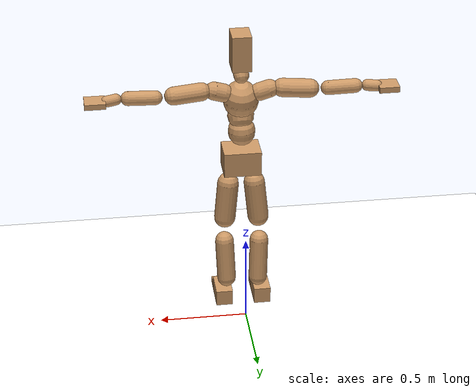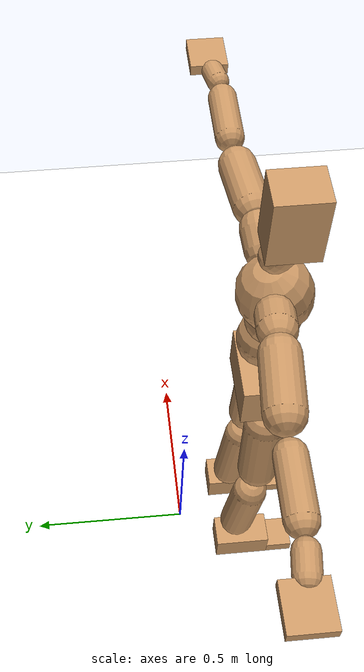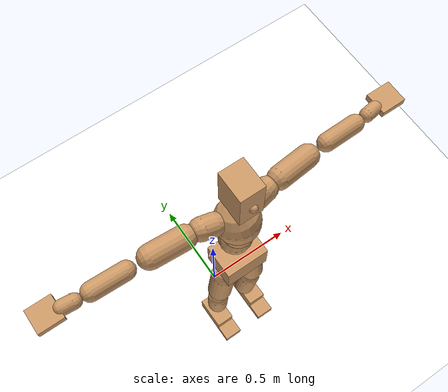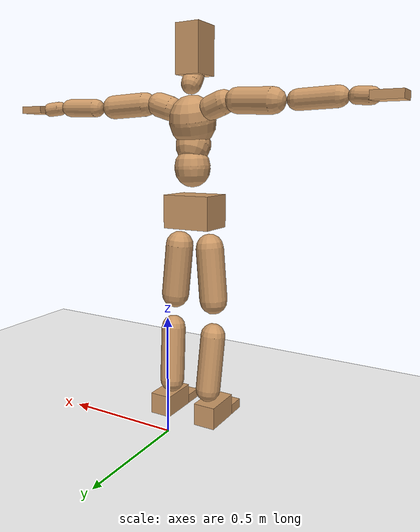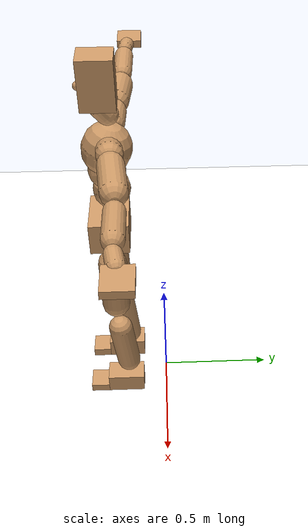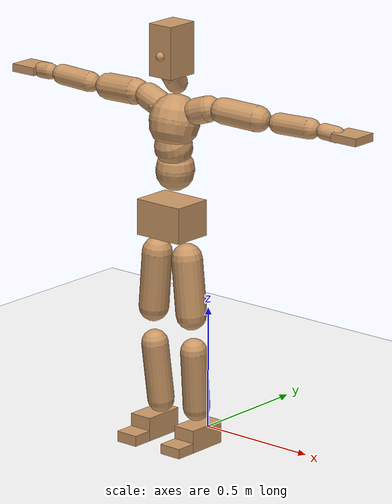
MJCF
<mujoco model="humanoid">
  <option integrator="implicitfast" />

  <visual>
    <global offwidth="1280" offheight="960" />
    <headlight active="1" ambient="0.34 0.34 0.34" diffuse="0.5 0.5 0.5" />
  </visual>

  <default>
    <joint damping="2" stiffness="2" armature="0.01" limited="true" solimplimit="0 .99 .01" />
    <geom condim="1" friction="0.7 0.005 0.0001" solimp=".99 .99 .003" solref="0.015 1" margin="0.001" rgba="0.8 0.6 .4 1" />
    <default class="smplcontact">
      <geom condim="3" friction="1. 0.005 0.0001" solref="0.015 1" solimp="0.98 0.98 0.001" priority="1" />
    </default>
    <default class="stiff_medium">
      <joint stiffness="10" />
    </default>
    <default class="stiff_medium_higher">
      <joint stiffness="50" />
    </default>
    <default class="stiff_high">
      <joint stiffness="100" />
    </default>
  </default>

  <asset>
    <texture type="skybox" builtin="gradient" rgb1="0.99 0.99 0.99" rgb2="0.608 0.828 0.892" width="100" />
    <texture builtin="flat" height="1278" mark="cross" markrgb="1 1 1" name="texgeom" random="0.01" rgb1="0.8 0.6 0.4" rgb2="0.8 0.6 0.4" type="cube" width="127" />
    <texture name="texplane" type="2d" builtin="checker" markrgb="1 1 1" rgb1="0.756 0.772 0.76" rgb2="0.6 0.6 0.6" width="100" height="100" />
    <material name="MatPlane" reflectance="0.5" texture="texplane" texrepeat="1 1" texuniform="true" />
    <material name="geom" texture="texgeom" texuniform="true" />
  </asset>

  <worldbody>
    <light name="tracking_light" pos="0 0 7" dir="0 0 -1" directional="true" cutoff="100" exponent="1" diffuse="1 1 1" specular="0.1 0.1 0.1" mode="trackcom" />
    <camera name="back" pos="0 3 2.4" xyaxes="-1 0 0 0 -1 2" mode="trackcom" />
    <camera name="side" pos="-3 0 2.4" xyaxes="0 -1 0 1 0 2" mode="trackcom" />
    <camera name="front_side" pos="-2.8 -2.8 0.8" xyaxes="0.5 -0.5 0 0.1 0.1 1" mode="trackcom" />
    <geom condim="3" name="floor" pos="0 0 0" rgba="1 1 1 1" size="100 100 .2" type="plane" material="MatPlane" />
    <body name="Pelvis" pos="-0.0018 -0.2233 0.9367" euler="90 0 0">
      <site name="Pelvis" size="0.01" />
      <freejoint name="Pelvis" />
      <geom type="box" pos="-0.0000 -0.0121 -0.0055" size="0.1069 0.0722 0.083" quat="1.0000 0.0000 0.0000 0.0000" density="3165.830099" name="Pelvis" />
      <body name="L_Hip" pos="0.0695 -0.0914 -0.0068">
        <joint name="L_Hip_x" type="hinge" pos="0 0 0" axis="1 0 0" stiffness="10.0" range="-160.0 22.92" class="stiff_medium" damping="14.999999999999998" armature="0.009999999999999998"/>
        <joint name="L_Hip_y" type="hinge" pos="0 0 0" axis="0 1 0" stiffness="10.0" range="-70.0 70.0" class="stiff_medium" damping="10.000000000000004" armature="0.010000000000000009"/>
        <joint name="L_Hip_z" type="hinge" pos="0 0 0" axis="0 0 1" stiffness="10.0" range="-28.65 90.0" class="stiff_medium" damping="9.999999999999998" armature="0.009999999999999998"/>
        <geom type="capsule" density="2040.816327" fromto="0.0069 -0.075 -0.0009 0.0274 -0.3002 -0.0036" size="0.0615" name="L_Hip" />
        <body name="L_Knee" pos="0.0343 -0.3752 -0.0045">
          <joint name="L_Knee_x" type="hinge" pos="0 0 0" axis="1 0 0" range="-5.16 171.89" damping="8.000000000000002" armature="0.010000000000000005" stiffness="2.0"/>
          <joint name="L_Knee_y" type="hinge" pos="0 0 0" axis="0 1 0" range="-4.58 6.88" damping="8.000000000000005" armature="0.010000000000000016" stiffness="2.0"/>
          <joint name="L_Knee_z" type="hinge" pos="0 0 0" axis="0 0 1" range="-6.88 4.58" damping="7.999999999999999" armature="0.009999999999999998" stiffness="2.0"/>
          <geom type="capsule" density="1234.567901" fromto="-0.0027 -0.0796 -0.0087 -0.0109 -0.3184 -0.035" size="0.0541" name="L_Knee" />
          <body name="L_Ankle" pos="-0.0136 -0.398 -0.0437">
            <joint name="L_Ankle_x" type="hinge" pos="0 0 0" axis="1 0 0" range="-45.84 45.84" class="stiff_medium" damping="6.000000000000062" armature="0.010000000000000212" stiffness="10.0"/>
            <joint name="L_Ankle_y" type="hinge" pos="0 0 0" axis="0 1 0" range="-74.48 22.92" class="stiff_medium" damping="3.000000000000001" armature="0.010000000000000005" stiffness="10.0"/>
            <joint name="L_Ankle_z" type="hinge" pos="0 0 0" axis="0 0 1" range="-4.58 4.58" class="stiff_medium" damping="6.00000000000003" armature="0.010000000000000104" stiffness="10.0"/>
            <geom type="box" pos="0.0233 -0.0239 0.0242" size="0.0483 0.0464 0.085" quat="1.0000 0.0000 0.0000 0.0000" density="449.071558" name="L_Ankle" class="smplcontact" />
            <body name="L_Toe" pos="0.0264 -0.0558 0.1193">
              <joint name="L_Toe_x" type="hinge" pos="0 0 0" axis="1 0 0" range="-91.67 22.92" armature="0.009999999999999698" damping="1.9999999999999698" stiffness="2.0"/>
              <joint name="L_Toe_y" type="hinge" pos="0 0 0" axis="0 1 0" range="-4.58 4.58" armature="0.01" damping="2.0" stiffness="2.0"/>
              <joint name="L_Toe_z" type="hinge" pos="0 0 0" axis="0 0 1" range="-4.58 4.58" armature="0.009999999999998932" damping="1.9999999999998932" stiffness="2.0"/>
              <geom type="box" pos="-0.003 0.0055 0.0248" size="0.0478 0.02 0.0496" quat="1.0000 0.0000 0.0000 0.0000" density="423.206892" name="L_Toe" class="smplcontact" />
            </body>
          </body>
        </body>
      </body>
      <body name="R_Hip" pos="-0.0677 -0.0905 -0.0043">
        <joint name="R_Hip_x" type="hinge" pos="0 0 0" axis="1 0 0" stiffness="10.0" range="-160.0 22.92" class="stiff_medium" damping="14.999999999999998" armature="0.009999999999999998"/>
        <joint name="R_Hip_y" type="hinge" pos="0 0 0" axis="0 1 0" stiffness="10.0" range="-70.0 70.0" class="stiff_medium" damping="10.000000000000004" armature="0.010000000000000009"/>
        <joint name="R_Hip_z" type="hinge" pos="0 0 0" axis="0 0 1" stiffness="10.0" range="-90.0 28.65" class="stiff_medium" damping="9.999999999999998" armature="0.009999999999999998"/>
        <geom type="capsule" density="2040.816327" fromto="-0.0077 -0.0765 -0.0018 -0.0306 -0.3061 -0.0071" size="0.0606" name="R_Hip" />
        <body name="R_Knee" pos="-0.0383 -0.3826 -0.0089">
          <joint name="R_Knee_x" type="hinge" pos="0 0 0" axis="1 0 0" range="-5.16 171.89" damping="8.000000000000002" armature="0.010000000000000005" stiffness="2.0"/>
          <joint name="R_Knee_y" type="hinge" pos="0 0 0" axis="0 1 0" range="-6.88 4.58" damping="8.000000000000005" armature="0.010000000000000016" stiffness="2.0"/>
          <joint name="R_Knee_z" type="hinge" pos="0 0 0" axis="0 0 1" range="-4.58 6.88" damping="7.999999999999999" armature="0.009999999999999998" stiffness="2.0"/>
          <geom type="capsule" density="1234.567901" fromto="0.0032 -0.0797 -0.0085 0.0126 -0.3187 -0.0338" size="0.0541" name="R_Knee" />
          <body name="R_Ankle" pos="0.0158 -0.3984 -0.0423">
            <joint name="R_Ankle_x" type="hinge" pos="0 0 0" axis="1 0 0" range="-45.84 45.84" class="stiff_medium" damping="6.000000000000062" armature="0.010000000000000212" stiffness="10.0"/>
            <joint name="R_Ankle_y" type="hinge" pos="0 0 0" axis="0 1 0" range="-22.92 74.48" class="stiff_medium" damping="3.000000000000001" armature="0.010000000000000005" stiffness="10.0"/>
            <joint name="R_Ankle_z" type="hinge" pos="0 0 0" axis="0 0 1" range="-4.58 4.58" class="stiff_medium" damping="6.00000000000003" armature="0.010000000000000104" stiffness="10.0"/>
            <geom type="box" pos="-0.0212 -0.0174 0.0256" size="0.0483 0.0478 0.0865" quat="1.0000 0.0000 0.0000 0.0000" density="434.700981" name="R_Ankle" class="smplcontact" />
            <body name="R_Toe" pos="-0.0254 -0.0481 0.1233">
              <joint name="R_Toe_x" type="hinge" pos="0 0 0" axis="1 0 0" range="-91.67 22.92" armature="0.009999999999999698" damping="1.9999999999999698" stiffness="2.0"/>
              <joint name="R_Toe_y" type="hinge" pos="0 0 0" axis="0 1 0" range="-4.58 4.58" armature="0.01" damping="2.0" stiffness="2.0"/>
              <joint name="R_Toe_z" type="hinge" pos="0 0 0" axis="0 0 1" range="-4.58 4.58" armature="0.009999999999998932" damping="1.9999999999998932" stiffness="2.0"/>
              <geom type="box" pos="0.0042 0.0045 0.0227" size="0.0479 0.0216 0.0493" quat="1.0000 0.0000 0.0000 0.0000" density="407.384095" name="R_Toe" class="smplcontact" />
            </body>
          </body>
        </body>
      </body>
      <body name="Torso" pos="-0.0025 0.109 -0.0267">
        <joint name="Torso_x" type="hinge" pos="0 0 0" axis="1 0 0" range="-25.78 57.3" class="stiff_medium" damping="13.593301082732577" armature="0.008888718408263658" stiffness="9.239068913043479"/>
        <joint name="Torso_y" type="hinge" pos="0 0 0" axis="0 1 0" range="-57.3 57.3" class="stiff_high" damping="19.12895966534628" armature="0.009963466885328839" stiffness="91.81470217391305"/>
        <joint name="Torso_z" type="hinge" pos="0 0 0" axis="0 0 1" range="-34.38 34.38" class="stiff_high" damping="18.60120066409231" armature="0.009250253601330478" stiffness="93.51221086956521"/>
        <geom type="capsule" density="2040.816327" fromto="0.0025 0.0608 0.0005 0.003 0.0743 0.0006" size="0.0769" name="Torso" />
        <body name="Spine" pos="0.0055 0.1352 0.0011">
          <joint name="Spine_x" type="hinge" pos="0 0 0" axis="1 0 0" stiffness="9.08212804347826" range="-25.78 57.3" class="stiff_medium" damping="13.162260338940744" armature="0.008477949289255556"/>
          <joint name="Spine_y" type="hinge" pos="0 0 0" axis="0 1 0" stiffness="9.104079565217392" range="-57.3 57.3" class="stiff_high" damping="7.619383321270138" armature="0.009963768471281633"/>
          <joint name="Spine_z" type="hinge" pos="0 0 0" axis="0 0 1" stiffness="18.264663043478265" range="-34.38 34.38" class="stiff_high" damping="11.049975738166228" armature="0.009284926880346591"/>
          <geom type="capsule" density="2040.816327" fromto="0.0007 0.0238 0.0114 0.0008 0.0291 0.014" size="0.0755" name="Spine" />
          <body name="Chest" pos="0.0015 0.0529 0.0254">
            <joint name="Chest_x" type="hinge" pos="0 0 0" axis="1 0 0" stiffness="8.830165217391304" range="-25.78 57.3" class="stiff_medium" damping="12.822311761608715" armature="0.00827525368950691"/>
            <joint name="Chest_y" type="hinge" pos="0 0 0" axis="0 1 0" stiffness="9.346349772727272" range="-57.3 57.3" class="stiff_high" damping="7.721479688952388" armature="0.009967335182433932"/>
            <joint name="Chest_z" type="hinge" pos="0 0 0" axis="0 0 1" stiffness="17.799269565217386" range="-34.38 34.38" class="stiff_high" damping="10.942085449939666" armature="0.009342552072704104"/>
            <geom type="capsule" density="2040.816327" fromto="-0.0009 0.0682 -0.0173 -0.001 0.0833 -0.0212" size="0.1002" name="Chest" />
            <body name="Neck" pos="-0.0028 0.2139 -0.0429">
              <joint name="Neck_x" type="hinge" pos="0 0 0" axis="1 0 0" range="-28.65 57.3" class="stiff_medium_higher" damping="7.263035472169119" armature="0.007052823969021804" stiffness="37.39756195652175"/>
              <joint name="Neck_y" type="hinge" pos="0 0 0" axis="0 1 0" range="-40.11 40.11" class="stiff_medium_higher" damping="6.98860146311493" armature="0.00655849153963308" stiffness="37.23459130434782"/>
              <joint name="Neck_z" type="hinge" pos="0 0 0" axis="0 0 1" range="-40.11 40.11" class="stiff_medium_higher" damping="7.213237401648987" armature="0.0070540734749663485" stiffness="36.87996304347826"/>
              <geom type="capsule" density="1000" fromto="0.001 0.013 0.0103 0.0041 0.052 0.0411" size="0.0436" name="Neck" />
              <body name="Head" pos="0.0052 0.065 0.0513">
                <joint name="Head_x" type="hinge" pos="0 0 0" axis="1 0 0" range="-28.65 57.3" class="stiff_medium_higher" damping="1.3944142482138124" armature="0.006668007872502372" stiffness="36.449999999999996"/>
                <joint name="Head_y" type="hinge" pos="0 0 0" axis="0 1 0" range="-40.11 40.11" class="stiff_medium_higher" damping="1.3192754246703555" armature="0.0059687505011630565" stiffness="36.449999999999996"/>
                <joint name="Head_z" type="hinge" pos="0 0 0" axis="0 0 1" range="-40.11 40.11" class="stiff_medium_higher" damping="1.3980297641467347" armature="0.006702631074897718" stiffness="36.449999999999996"/>
                <geom type="box" pos="-0.0042 0.0876 -0.0116" size="0.05454 0.10386 0.0684" quat="1.0000 0.0000 0.0000 0.0000" density="1018.069894" name="Head" />
                <geom type="capsule" name="nose" size="0.018 0.009" pos="0 0.07 0.05" quat="1 0 0 0" mass="0" contype="0" conaffinity="0" />
              </body>
            </body>
            <body name="L_Thorax" pos="0.0788 0.1217 -0.0341">
              <joint name="L_Thorax_x" type="hinge" pos="0 0 0" axis="1 0 0" range="-10.89 4.58" class="stiff_medium_higher" damping="19.999999999999936" armature="0.009999999999999936" stiffness="50.0"/>
              <joint name="L_Thorax_y" type="hinge" pos="0 0 0" axis="0 1 0" range="-28.65 17.19" class="stiff_medium_higher" damping="20.0" armature="0.01" stiffness="50.0"/>
              <joint name="L_Thorax_z" type="hinge" pos="0 0 0" axis="0 0 1" range="-31.51 40.11" class="stiff_medium_higher" damping="20.0" armature="0.01" stiffness="50.0"/>
              <geom type="capsule" density="1000" fromto="0.0182 0.0061 -0.0018 0.0728 0.0244 -0.0071" size="0.0521" name="L_Thorax" />
              <body name="L_Shoulder" pos="0.091 0.0305 -0.0089">
                <joint name="L_Shoulder_x" type="hinge" pos="0 0 0" axis="1 0 0" range="-97.4 97.4" class="stiff_medium" damping="6.000000000000057" armature="0.010000000000000191" stiffness="10.0"/>
                <joint name="L_Shoulder_y" type="hinge" pos="0 0 0" axis="0 1 0" range="-108.86 80.21" class="stiff_medium" damping="5.999999999999999" armature="0.009999999999999998" stiffness="10.0"/>
                <joint name="L_Shoulder_z" type="hinge" pos="0 0 0" axis="0 0 1" range="-97.4 85.94" class="stiff_medium" damping="6.000000000000002" armature="0.010000000000000007" stiffness="10.0"/>
                <geom type="capsule" density="1000" fromto="0.0519 -0.0026 -0.0055 0.2077 -0.0102 -0.022" size="0.0517" name="L_Shoulder" />
                <body name="L_Elbow" pos="0.2596 -0.0128 -0.0275">
                  <joint name="L_Elbow_x" type="hinge" pos="0 0 0" axis="1 0 0" range="-17.19 4.58" damping="4.999999999999989" armature="0.009999999999999959" stiffness="2.0"/>
                  <joint name="L_Elbow_y" type="hinge" pos="0 0 0" axis="0 1 0" range="-180.0 17.19" damping="5.000000000000004" armature="0.010000000000000018" stiffness="2.0"/>
                  <joint name="L_Elbow_z" type="hinge" pos="0 0 0" axis="0 0 1" range="-100.84 4.58" damping="5.0" armature="0.010000000000000002" stiffness="2.0"/>
                  <geom type="capsule" density="1000" fromto="0.0498 0.0018 -0.0002 0.1994 0.0072 -0.0009" size="0.0405" name="L_Elbow" />
                  <body name="L_Wrist" pos="0.2492 0.009 -0.0012">
                    <joint name="L_Wrist_x" type="hinge" pos="0 0 0" axis="1 0 0" range="-180.0 22.92" armature="0.009999999999999492" damping="1.9999999999999492" stiffness="2.0"/>
                    <joint name="L_Wrist_y" type="hinge" pos="0 0 0" axis="0 1 0" range="-17.19 17.19" armature="0.009999999999999894" damping="1.9999999999999893" stiffness="2.0"/>
                    <joint name="L_Wrist_z" type="hinge" pos="0 0 0" axis="0 0 1" range="-22.92 22.92" armature="0.009999999999999811" damping="1.9999999999999811" stiffness="2.0"/>
                    <geom type="capsule" density="1000" fromto="0.0168 -0.0016 -0.003 0.0672 -0.0065 -0.012" size="0.0318" name="L_Wrist" class="smplcontact" />
                    <body name="L_Hand" pos="0.084 -0.0082 -0.0149">
                      <joint name="L_Hand_x" type="hinge" pos="0 0 0" axis="1 0 0" range="-17.19 17.19" armature="0.010000000000000014" damping="2.0000000000000013" stiffness="2.0"/>
                      <joint name="L_Hand_y" type="hinge" pos="0 0 0" axis="0 1 0" range="-51.57 51.57" armature="0.010000000000000153" damping="2.000000000000015" stiffness="2.0"/>
                      <joint name="L_Hand_z" type="hinge" pos="0 0 0" axis="0 0 1" range="-91.67 91.67" armature="0.01000000000000041" damping="2.000000000000041" stiffness="2.0"/>
                      <geom type="box" pos="0.0493 0.001 -0.0058" size="0.0585 0.0158 0.0538" quat="1.0000 0.0000 0.0000 0.0000" density="400.552564" name="L_Hand" class="smplcontact" />
                    </body>
                  </body>
                </body>
              </body>
            </body>
            <body name="R_Thorax" pos="-0.0818 0.1188 -0.0386">
              <joint name="R_Thorax_x" type="hinge" pos="0 0 0" axis="1 0 0" range="-10.89 4.58" class="stiff_medium_higher" damping="19.999999999999936" armature="0.009999999999999936" stiffness="50.0"/>
              <joint name="R_Thorax_y" type="hinge" pos="0 0 0" axis="0 1 0" range="-17.19 28.65" class="stiff_medium_higher" damping="20.0" armature="0.01" stiffness="50.0"/>
              <joint name="R_Thorax_z" type="hinge" pos="0 0 0" axis="0 0 1" range="-40.11 31.51" class="stiff_medium_higher" damping="20.0" armature="0.01" stiffness="50.0"/>
              <geom type="capsule" density="1000" fromto="-0.0192 0.0065 -0.0018 -0.0768 0.026 -0.0073" size="0.0511" name="R_Thorax" />
              <body name="R_Shoulder" pos="-0.096 0.0326 -0.0091">
                <joint name="R_Shoulder_x" type="hinge" pos="0 0 0" axis="1 0 0" range="-97.4 97.4" class="stiff_medium" damping="6.000000000000057" armature="0.010000000000000191" stiffness="10.0"/>
                <joint name="R_Shoulder_y" type="hinge" pos="0 0 0" axis="0 1 0" range="-80.21 108.86" class="stiff_medium" damping="5.999999999999999" armature="0.009999999999999998" stiffness="10.0"/>
                <joint name="R_Shoulder_z" type="hinge" pos="0 0 0" axis="0 0 1" range="-85.94 97.4" class="stiff_medium" damping="6.000000000000002" armature="0.010000000000000007" stiffness="10.0"/>
                <geom type="capsule" density="1000" fromto="-0.0507 -0.0027 -0.0043 -0.203 -0.0107 -0.0171" size="0.0531" name="R_Shoulder" />
                <body name="R_Elbow" pos="-0.2537 -0.0133 -0.0214">
                  <joint name="R_Elbow_x" type="hinge" pos="0 0 0" axis="1 0 0" range="-17.19 4.58" damping="4.999999999999989" armature="0.009999999999999959" stiffness="2.0"/>
                  <joint name="R_Elbow_y" type="hinge" pos="0 0 0" axis="0 1 0" range="-17.19 180.0" damping="5.000000000000004" armature="0.010000000000000018" stiffness="2.0"/>
                  <joint name="R_Elbow_z" type="hinge" pos="0 0 0" axis="0 0 1" range="-4.58 100.84" damping="5.0" armature="0.010000000000000002" stiffness="2.0"/>
                  <geom type="capsule" density="1000" fromto="-0.0511 0.0016 -0.0011 -0.2042 0.0062 -0.0044" size="0.0408" name="R_Elbow" />
                  <body name="R_Wrist" pos="-0.2553 0.0078 -0.0056">
                    <joint name="R_Wrist_x" type="hinge" pos="0 0 0" axis="1 0 0" range="-180.0 22.92" armature="0.009999999999999492" damping="1.9999999999999492" stiffness="2.0"/>
                    <joint name="R_Wrist_y" type="hinge" pos="0 0 0" axis="0 1 0" range="-17.19 17.19" armature="0.009999999999999894" damping="1.9999999999999893" stiffness="2.0"/>
                    <joint name="R_Wrist_z" type="hinge" pos="0 0 0" axis="0 0 1" range="-22.92 22.92" armature="0.009999999999999811" damping="1.9999999999999811" stiffness="2.0"/>
                    <geom type="capsule" density="1000" fromto="-0.0169 -0.0012 -0.0021 -0.0677 -0.0049 -0.0083" size="0.0326" name="R_Wrist" class="smplcontact" />
                    <body name="R_Hand" pos="-0.0846 -0.0061 -0.0103">
                      <joint name="R_Hand_x" type="hinge" pos="0 0 0" axis="1 0 0" range="-17.19 17.19" armature="0.010000000000000014" damping="2.0000000000000013" stiffness="2.0"/>
                      <joint name="R_Hand_y" type="hinge" pos="0 0 0" axis="0 1 0" range="-51.57 51.57" armature="0.010000000000000153" damping="2.000000000000015" stiffness="2.0"/>
                      <joint name="R_Hand_z" type="hinge" pos="0 0 0" axis="0 0 1" range="-91.67 91.67" armature="0.01000000000000041" damping="2.000000000000041" stiffness="2.0"/>
                      <geom type="box" pos="-0.0462 -0.0009 -0.0079" size="0.0569 0.0164 0.0546" quat="1.0000 0.0000 0.0000 0.0000" density="403.679611" name="R_Hand" class="smplcontact" />
                    </body>
                  </body>
                </body>
              </body>
            </body>
          </body>
        </body>
      </body>
    </body>
  </worldbody>
  <actuator>
    <general name="L_Hip_x" joint="L_Hip_x" biastype="affine" gainprm="287.33006409732246" biasprm="-215.3247604770444 -180.0 -1.9999999999999998" ctrllimited="true" ctrlrange="-1 1" forcerange="-360.0 360.0" />
    <general name="L_Hip_y" joint="L_Hip_y" biastype="affine" gainprm="219.9114857512855" biasprm="0.0 -180.0 -2.000000000000001" ctrllimited="true" ctrlrange="-1 1" forcerange="-360.0 360.0" />
    <general name="L_Hip_z" joint="L_Hip_z" biastype="affine" gainprm="186.3749841742145" biasprm="96.3683546488669 -180.0 -1.9999999999999998" ctrllimited="true" ctrlrange="-1 1" forcerange="-360.0 360.0" />
    <general name="L_Knee_x" joint="L_Knee_x" biastype="affine" gainprm="278.10948965903646" biasprm="261.8988715665131 -180.0 -2.0000000000000004" ctrllimited="true" ctrlrange="-1 1" forcerange="-360.0 360.0" />
    <general name="L_Knee_y" joint="L_Knee_y" biastype="affine" gainprm="18.001325905069514" biasprm="3.612831551628262 -180.0 -2.0000000000000013" ctrllimited="true" ctrlrange="-1 1" forcerange="-360.0 360.0" />
    <general name="L_Knee_z" joint="L_Knee_z" biastype="affine" gainprm="18.001325905069514" biasprm="-3.612831551628262 -180.0 -1.9999999999999998" ctrllimited="true" ctrlrange="-1 1" forcerange="-360.0 360.0" />
    <general name="L_Ankle_x" joint="L_Ankle_x" biastype="affine" gainprm="72.00530362027807" biasprm="0.0 -90.0 -2.000000000000021" ctrllimited="true" ctrlrange="-1 1" forcerange="-180.0 180.0" />
    <general name="L_Ankle_y" joint="L_Ankle_y" biastype="affine" gainprm="76.49778111491148" biasprm="-40.49512930477244 -90.0 -2.0000000000000004" ctrllimited="true" ctrlrange="-1 1" forcerange="-180.0 180.0" />
    <general name="L_Ankle_z" joint="L_Ankle_z" biastype="affine" gainprm="7.1942471767206255" biasprm="0.0 -90.0 -2.00000000000001" ctrllimited="true" ctrlrange="-1 1" forcerange="-180.0 180.0" />
    <general name="L_Toe_x" joint="L_Toe_x" biastype="affine" gainprm="71.99902043497087" biasprm="-43.19689898685965 -72.0 -0.7999999999999879" ctrllimited="true" ctrlrange="-1 1" forcerange="-144.0 144.0" />
    <general name="L_Toe_y" joint="L_Toe_y" biastype="affine" gainprm="5.755397741376501" biasprm="0.0 -72.0 -0.8" ctrllimited="true" ctrlrange="-1 1" forcerange="-144.0 144.0" />
    <general name="L_Toe_z" joint="L_Toe_z" biastype="affine" gainprm="5.755397741376501" biasprm="0.0 -72.0 -0.7999999999999573" ctrllimited="true" ctrlrange="-1 1" forcerange="-144.0 144.0" />
    <general name="R_Hip_x" joint="R_Hip_x" biastype="affine" gainprm="287.33006409732246" biasprm="-215.3247604770444 -180.0 -1.9999999999999998" ctrllimited="true" ctrlrange="-1 1" forcerange="-360.0 360.0" />
    <general name="R_Hip_y" joint="R_Hip_y" biastype="affine" gainprm="219.9114857512855" biasprm="0.0 -180.0 -2.000000000000001" ctrllimited="true" ctrlrange="-1 1" forcerange="-360.0 360.0" />
    <general name="R_Hip_z" joint="R_Hip_z" biastype="affine" gainprm="186.3749841742145" biasprm="-96.3683546488669 -180.0 -1.9999999999999998" ctrllimited="true" ctrlrange="-1 1" forcerange="-360.0 360.0" />
    <general name="R_Knee_x" joint="R_Knee_x" biastype="affine" gainprm="278.10948965903646" biasprm="261.8988715665131 -180.0 -2.0000000000000004" ctrllimited="true" ctrlrange="-1 1" forcerange="-360.0 360.0" />
    <general name="R_Knee_y" joint="R_Knee_y" biastype="affine" gainprm="18.001325905069514" biasprm="-3.612831551628262 -180.0 -2.0000000000000013" ctrllimited="true" ctrlrange="-1 1" forcerange="-360.0 360.0" />
    <general name="R_Knee_z" joint="R_Knee_z" biastype="affine" gainprm="18.001325905069514" biasprm="3.612831551628262 -180.0 -1.9999999999999998" ctrllimited="true" ctrlrange="-1 1" forcerange="-360.0 360.0" />
    <general name="R_Ankle_x" joint="R_Ankle_x" biastype="affine" gainprm="72.00530362027807" biasprm="0.0 -90.0 -2.000000000000021" ctrllimited="true" ctrlrange="-1 1" forcerange="-180.0 180.0" />
    <general name="R_Ankle_y" joint="R_Ankle_y" biastype="affine" gainprm="76.49778111491148" biasprm="40.49512930477244 -90.0 -2.0000000000000004" ctrllimited="true" ctrlrange="-1 1" forcerange="-180.0 180.0" />
    <general name="R_Ankle_z" joint="R_Ankle_z" biastype="affine" gainprm="7.1942471767206255" biasprm="0.0 -90.0 -2.00000000000001" ctrllimited="true" ctrlrange="-1 1" forcerange="-180.0 180.0" />
    <general name="R_Toe_x" joint="R_Toe_x" biastype="affine" gainprm="71.99902043497087" biasprm="-43.19689898685965 -72.0 -0.7999999999999879" ctrllimited="true" ctrlrange="-1 1" forcerange="-144.0 144.0" />
    <general name="R_Toe_y" joint="R_Toe_y" biastype="affine" gainprm="5.755397741376501" biasprm="0.0 -72.0 -0.8" ctrllimited="true" ctrlrange="-1 1" forcerange="-144.0 144.0" />
    <general name="R_Toe_z" joint="R_Toe_z" biastype="affine" gainprm="5.755397741376501" biasprm="0.0 -72.0 -0.7999999999999573" ctrllimited="true" ctrlrange="-1 1" forcerange="-144.0 144.0" />
    <general name="Torso_x" joint="Torso_x" biastype="affine" gainprm="160.76196574731455" biasprm="60.99202167014147 -221.7376539130435 -3.6248802887286873" ctrllimited="true" ctrlrange="-1 1" forcerange="-332.60648086956525 332.60648086956525" />
    <general name="Torso_y" joint="Torso_y" biastype="affine" gainprm="220.3715168946004" biasprm="0.0 -220.3552852173913 -3.8257919330692562" ctrllimited="true" ctrlrange="-1 1" forcerange="-330.53292782608696 330.53292782608696" />
    <general name="Torso_z" joint="Torso_z" biastype="affine" gainprm="134.66750271733022" biasprm="0.0 -224.42930608695653 -3.7202401328184624" ctrllimited="true" ctrlrange="-1 1" forcerange="-336.6439591304348 336.6439591304348" />
    <general name="Spine_x" joint="Spine_x" biastype="affine" gainprm="158.0311578125693" biasprm="59.95597128372873 -217.97107304347824 -3.5099360903841985" ctrllimited="true" ctrlrange="-1 1" forcerange="-326.9566095652174 326.9566095652174" />
    <general name="Spine_y" joint="Spine_y" biastype="affine" gainprm="218.5140044255491" biasprm="0.0 -218.49790956521738 -3.809691660635069" ctrllimited="true" ctrlrange="-1 1" forcerange="-327.7468643478261 327.7468643478261" />
    <general name="Spine_z" joint="Spine_z" biastype="affine" gainprm="131.51526079677245" biasprm="0.0 -219.17595652173918 -3.68332524605541" ctrllimited="true" ctrlrange="-1 1" forcerange="-328.76393478260877 328.76393478260877" />
    <general name="Chest_x" joint="Chest_x" biastype="affine" gainprm="153.6469455506819" biasprm="58.29263028114458 -211.9239652173913 -3.4192831364289904" ctrllimited="true" ctrlrange="-1 1" forcerange="-317.8859478260869 317.8859478260869" />
    <general name="Chest_y" joint="Chest_y" biastype="affine" gainprm="224.32891770884802" biasprm="0.0 -224.31239454545454 -3.860739844476194" ctrllimited="true" ctrlrange="-1 1" forcerange="-336.46859181818184 336.46859181818184" />
    <general name="Chest_z" joint="Chest_z" biastype="affine" gainprm="128.16418092626526" biasprm="0.0 -213.59123478260864 -3.6473618166465553" ctrllimited="true" ctrlrange="-1 1" forcerange="-320.3868521739129 320.3868521739129" />
    <general name="Neck_x" joint="Neck_x" biastype="affine" gainprm="20.196171025031312" biasprm="6.73205700834377 -26.926244608695658 -0.5810428377735296" ctrllimited="true" ctrlrange="-1 1" forcerange="-53.852489217391316 53.852489217391316" />
    <general name="Neck_y" joint="Neck_y" biastype="affine" gainprm="18.76761636432571" biasprm="0.0 -26.808905739130434 -0.5590881170491944" ctrllimited="true" ctrlrange="-1 1" forcerange="-53.61781147826087 53.61781147826087" />
    <general name="Neck_z" joint="Neck_z" biastype="affine" gainprm="18.588870555152006" biasprm="0.0 -26.55357339130435 -0.577058992131919" ctrllimited="true" ctrlrange="-1 1" forcerange="-53.1071467826087 53.1071467826087" />
    <general name="Head_x" joint="Head_x" biastype="affine" gainprm="13.122966584795675" biasprm="4.374322194931892 -17.496 -0.557765699285525" ctrllimited="true" ctrlrange="-1 1" forcerange="-34.992 34.992" />
    <general name="Head_y" joint="Head_y" biastype="affine" gainprm="12.248102145809296" biasprm="0.0 -17.496 -0.5277101698681422" ctrllimited="true" ctrlrange="-1 1" forcerange="-34.992 34.992" />
    <general name="Head_z" joint="Head_z" biastype="affine" gainprm="12.248102145809296" biasprm="0.0 -17.496 -0.5592119056586939" ctrllimited="true" ctrlrange="-1 1" forcerange="-34.992 34.992" />
    <general name="L_Thorax_x" joint="L_Thorax_x" biastype="affine" gainprm="16.200146117011364" biasprm="-6.6078165480505335 -120.0 -1.599999999999995" ctrllimited="true" ctrlrange="-1 1" forcerange="-240.0 240.0" />
    <general name="L_Thorax_y" joint="L_Thorax_y" biastype="affine" gainprm="48.00353574685204" biasprm="-12.00088393671301 -120.0 -1.6" ctrllimited="true" ctrlrange="-1 1" forcerange="-240.0 240.0" />
    <general name="L_Thorax_z" joint="L_Thorax_z" biastype="affine" gainprm="75.00028861670033" biasprm="9.00589894029074 -120.0 -1.6" ctrllimited="true" ctrlrange="-1 1" forcerange="-240.0 240.0" />
    <general name="L_Shoulder_x" joint="L_Shoulder_x" biastype="affine" gainprm="81.5976331892389" biasprm="0.0 -48.0 -1.6000000000000154" ctrllimited="true" ctrlrange="-1 1" forcerange="-96.0 96.0" />
    <general name="L_Shoulder_y" joint="L_Shoulder_y" biastype="affine" gainprm="79.19745640189629" biasprm="-12.00088393671301 -48.0 -1.5999999999999999" ctrllimited="true" ctrlrange="-1 1" forcerange="-96.0 96.0" />
    <general name="L_Shoulder_z" joint="L_Shoulder_z" biastype="affine" gainprm="76.79727961455369" biasprm="-4.800353574685214 -48.0 -1.6000000000000005" ctrllimited="true" ctrlrange="-1 1" forcerange="-96.0 96.0" />
    <general name="L_Elbow_x" joint="L_Elbow_x" biastype="affine" gainprm="13.67849441372996" biasprm="-7.923096672353461 -72.0 -0.7999999999999984" ctrllimited="true" ctrlrange="-1 1" forcerange="-144.0 144.0" />
    <general name="L_Elbow_y" joint="L_Elbow_y" biastype="affine" gainprm="123.89813107227425" biasprm="-102.29653998619085 -72.0 -0.8000000000000007" ctrllimited="true" ctrlrange="-1 1" forcerange="-144.0 144.0" />
    <general name="L_Elbow_z" joint="L_Elbow_z" biastype="affine" gainprm="66.23733950828719" biasprm="-60.4819417669107 -72.0 -0.8" ctrllimited="true" ctrlrange="-1 1" forcerange="-144.0 144.0" />
    <general name="L_Wrist_x" joint="L_Wrist_x" biastype="affine" gainprm="21.24973270888136" biasprm="-16.449379134196157 -12.0 -0.7999999999999797" ctrllimited="true" ctrlrange="-1 1" forcerange="-24.0 24.0" />
    <general name="L_Wrist_y" joint="L_Wrist_y" biastype="affine" gainprm="3.6002651810139037" biasprm="0.0 -12.0 -0.7999999999999958" ctrllimited="true" ctrlrange="-1 1" forcerange="-24.0 24.0" />
    <general name="L_Wrist_z" joint="L_Wrist_z" biastype="affine" gainprm="4.800353574685205" biasprm="0.0 -12.0 -0.7999999999999925" ctrllimited="true" ctrlrange="-1 1" forcerange="-24.0 24.0" />
    <general name="L_Hand_x" joint="L_Hand_x" biastype="affine" gainprm="3.6002651810139037" biasprm="0.0 -12.0 -0.8000000000000006" ctrllimited="true" ctrlrange="-1 1" forcerange="-24.0 24.0" />
    <general name="L_Hand_y" joint="L_Hand_y" biastype="affine" gainprm="10.800795543041708" biasprm="0.0 -12.0 -0.800000000000006" ctrllimited="true" ctrlrange="-1 1" forcerange="-24.0 24.0" />
    <general name="L_Hand_z" joint="L_Hand_z" biastype="affine" gainprm="19.199319903638422" biasprm="0.0 -12.0 -0.8000000000000164" ctrllimited="true" ctrlrange="-1 1" forcerange="-24.0 24.0" />
    <general name="R_Thorax_x" joint="R_Thorax_x" biastype="affine" gainprm="16.200146117011364" biasprm="-6.6078165480505335 -120.0 -1.599999999999995" ctrllimited="true" ctrlrange="-1 1" forcerange="-240.0 240.0" />
    <general name="R_Thorax_y" joint="R_Thorax_y" biastype="affine" gainprm="48.00353574685204" biasprm="12.000883936713002 -120.0 -1.6" ctrllimited="true" ctrlrange="-1 1" forcerange="-240.0 240.0" />
    <general name="R_Thorax_z" joint="R_Thorax_z" biastype="affine" gainprm="75.00028861670033" biasprm="-9.00589894029074 -120.0 -1.6" ctrllimited="true" ctrlrange="-1 1" forcerange="-240.0 240.0" />
    <general name="R_Shoulder_x" joint="R_Shoulder_x" biastype="affine" gainprm="81.5976331892389" biasprm="0.0 -48.0 -1.6000000000000154" ctrllimited="true" ctrlrange="-1 1" forcerange="-96.0 96.0" />
    <general name="R_Shoulder_y" joint="R_Shoulder_y" biastype="affine" gainprm="79.19745640189629" biasprm="12.00088393671301 -48.0 -1.5999999999999999" ctrllimited="true" ctrlrange="-1 1" forcerange="-96.0 96.0" />
    <general name="R_Shoulder_z" joint="R_Shoulder_z" biastype="affine" gainprm="76.79727961455369" biasprm="4.800353574685204 -48.0 -1.6000000000000005" ctrllimited="true" ctrlrange="-1 1" forcerange="-96.0 96.0" />
    <general name="R_Elbow_x" joint="R_Elbow_x" biastype="affine" gainprm="13.67849441372996" biasprm="-7.923096672353461 -72.0 -0.7999999999999984" ctrllimited="true" ctrlrange="-1 1" forcerange="-144.0 144.0" />
    <general name="R_Elbow_y" joint="R_Elbow_y" biastype="affine" gainprm="123.89813107227425" biasprm="102.29653998619085 -72.0 -0.8000000000000007" ctrllimited="true" ctrlrange="-1 1" forcerange="-144.0 144.0" />
    <general name="R_Elbow_z" joint="R_Elbow_z" biastype="affine" gainprm="66.23733950828719" biasprm="60.481941766910694 -72.0 -0.8" ctrllimited="true" ctrlrange="-1 1" forcerange="-144.0 144.0" />
    <general name="R_Wrist_x" joint="R_Wrist_x" biastype="affine" gainprm="21.24973270888136" biasprm="-16.449379134196157 -12.0 -0.7999999999999797" ctrllimited="true" ctrlrange="-1 1" forcerange="-24.0 24.0" />
    <general name="R_Wrist_y" joint="R_Wrist_y" biastype="affine" gainprm="3.6002651810139037" biasprm="0.0 -12.0 -0.7999999999999958" ctrllimited="true" ctrlrange="-1 1" forcerange="-24.0 24.0" />
    <general name="R_Wrist_z" joint="R_Wrist_z" biastype="affine" gainprm="4.800353574685205" biasprm="0.0 -12.0 -0.7999999999999925" ctrllimited="true" ctrlrange="-1 1" forcerange="-24.0 24.0" />
    <general name="R_Hand_x" joint="R_Hand_x" biastype="affine" gainprm="3.6002651810139037" biasprm="0.0 -12.0 -0.8000000000000006" ctrllimited="true" ctrlrange="-1 1" forcerange="-24.0 24.0" />
    <general name="R_Hand_y" joint="R_Hand_y" biastype="affine" gainprm="10.800795543041708" biasprm="0.0 -12.0 -0.800000000000006" ctrllimited="true" ctrlrange="-1 1" forcerange="-24.0 24.0" />
    <general name="R_Hand_z" joint="R_Hand_z" biastype="affine" gainprm="19.199319903638422" biasprm="0.0 -12.0 -0.8000000000000164" ctrllimited="true" ctrlrange="-1 1" forcerange="-24.0 24.0" />
  </actuator>
  <contact>
    <exclude body1="Torso" body2="Chest" />
    <exclude body1="Head" body2="Chest" />
    <exclude body1="R_Knee" body2="R_Toe" />
    <exclude body1="R_Knee" body2="L_Ankle" />
    <exclude body1="R_Knee" body2="L_Toe" />
    <exclude body1="L_Knee" body2="L_Toe" />
    <exclude body1="L_Knee" body2="R_Ankle" />
    <exclude body1="L_Knee" body2="R_Toe" />
    <exclude body1="L_Shoulder" body2="Chest" />
    <exclude body1="R_Shoulder" body2="Chest" />
  </contact>
  <sensor>
    <framelinvel name="sensor_Pelvis_framelinvel" objtype="xbody" objname="Pelvis" />
    <framelinvel name="sensor_L_Hip_framelinvel" objtype="xbody" objname="L_Hip" />
    <framelinvel name="sensor_L_Knee_framelinvel" objtype="xbody" objname="L_Knee" />
    <framelinvel name="sensor_L_Ankle_framelinvel" objtype="xbody" objname="L_Ankle" />
    <framelinvel name="sensor_L_Toe_framelinvel" objtype="xbody" objname="L_Toe" />
    <framelinvel name="sensor_R_Hip_framelinvel" objtype="xbody" objname="R_Hip" />
    <framelinvel name="sensor_R_Knee_framelinvel" objtype="xbody" objname="R_Knee" />
    <framelinvel name="sensor_R_Ankle_framelinvel" objtype="xbody" objname="R_Ankle" />
    <framelinvel name="sensor_R_Toe_framelinvel" objtype="xbody" objname="R_Toe" />
    <framelinvel name="sensor_Torso_framelinvel" objtype="xbody" objname="Torso" />
    <framelinvel name="sensor_Spine_framelinvel" objtype="xbody" objname="Spine" />
    <framelinvel name="sensor_Chest_framelinvel" objtype="xbody" objname="Chest" />
    <framelinvel name="sensor_Neck_framelinvel" objtype="xbody" objname="Neck" />
    <framelinvel name="sensor_Head_framelinvel" objtype="xbody" objname="Head" />
    <framelinvel name="sensor_L_Thorax_framelinvel" objtype="xbody" objname="L_Thorax" />
    <framelinvel name="sensor_L_Shoulder_framelinvel" objtype="xbody" objname="L_Shoulder" />
    <framelinvel name="sensor_L_Elbow_framelinvel" objtype="xbody" objname="L_Elbow" />
    <framelinvel name="sensor_L_Wrist_framelinvel" objtype="xbody" objname="L_Wrist" />
    <framelinvel name="sensor_L_Hand_framelinvel" objtype="xbody" objname="L_Hand" />
    <framelinvel name="sensor_R_Thorax_framelinvel" objtype="xbody" objname="R_Thorax" />
    <framelinvel name="sensor_R_Shoulder_framelinvel" objtype="xbody" objname="R_Shoulder" />
    <framelinvel name="sensor_R_Elbow_framelinvel" objtype="xbody" objname="R_Elbow" />
    <framelinvel name="sensor_R_Wrist_framelinvel" objtype="xbody" objname="R_Wrist" />
    <framelinvel name="sensor_R_Hand_framelinvel" objtype="xbody" objname="R_Hand" />
    <frameangvel name="sensor_Pelvis_frameangvel" objtype="xbody" objname="Pelvis" />
    <frameangvel name="sensor_L_Hip_frameangvel" objtype="xbody" objname="L_Hip" />
    <frameangvel name="sensor_L_Knee_frameangvel" objtype="xbody" objname="L_Knee" />
    <frameangvel name="sensor_L_Ankle_frameangvel" objtype="xbody" objname="L_Ankle" />
    <frameangvel name="sensor_L_Toe_frameangvel" objtype="xbody" objname="L_Toe" />
    <frameangvel name="sensor_R_Hip_frameangvel" objtype="xbody" objname="R_Hip" />
    <frameangvel name="sensor_R_Knee_frameangvel" objtype="xbody" objname="R_Knee" />
    <frameangvel name="sensor_R_Ankle_frameangvel" objtype="xbody" objname="R_Ankle" />
    <frameangvel name="sensor_R_Toe_frameangvel" objtype="xbody" objname="R_Toe" />
    <frameangvel name="sensor_Torso_frameangvel" objtype="xbody" objname="Torso" />
    <frameangvel name="sensor_Spine_frameangvel" objtype="xbody" objname="Spine" />
    <frameangvel name="sensor_Chest_frameangvel" objtype="xbody" objname="Chest" />
    <frameangvel name="sensor_Neck_frameangvel" objtype="xbody" objname="Neck" />
    <frameangvel name="sensor_Head_frameangvel" objtype="xbody" objname="Head" />
    <frameangvel name="sensor_L_Thorax_frameangvel" objtype="xbody" objname="L_Thorax" />
    <frameangvel name="sensor_L_Shoulder_frameangvel" objtype="xbody" objname="L_Shoulder" />
    <frameangvel name="sensor_L_Elbow_frameangvel" objtype="xbody" objname="L_Elbow" />
    <frameangvel name="sensor_L_Wrist_frameangvel" objtype="xbody" objname="L_Wrist" />
    <frameangvel name="sensor_L_Hand_frameangvel" objtype="xbody" objname="L_Hand" />
    <frameangvel name="sensor_R_Thorax_frameangvel" objtype="xbody" objname="R_Thorax" />
    <frameangvel name="sensor_R_Shoulder_frameangvel" objtype="xbody" objname="R_Shoulder" />
    <frameangvel name="sensor_R_Elbow_frameangvel" objtype="xbody" objname="R_Elbow" />
    <frameangvel name="sensor_R_Wrist_frameangvel" objtype="xbody" objname="R_Wrist" />
    <frameangvel name="sensor_R_Hand_frameangvel" objtype="xbody" objname="R_Hand" />
    <subtreelinvel name="Chest_subtreelinvel" body="Chest" />
    <gyro name="Pelvis_gyro" site="Pelvis" />
  </sensor>
</mujoco>
